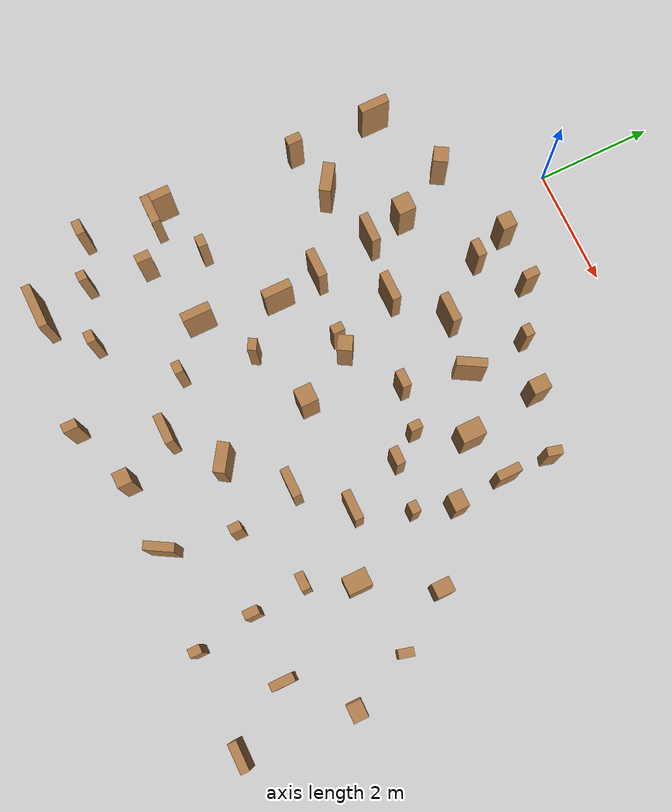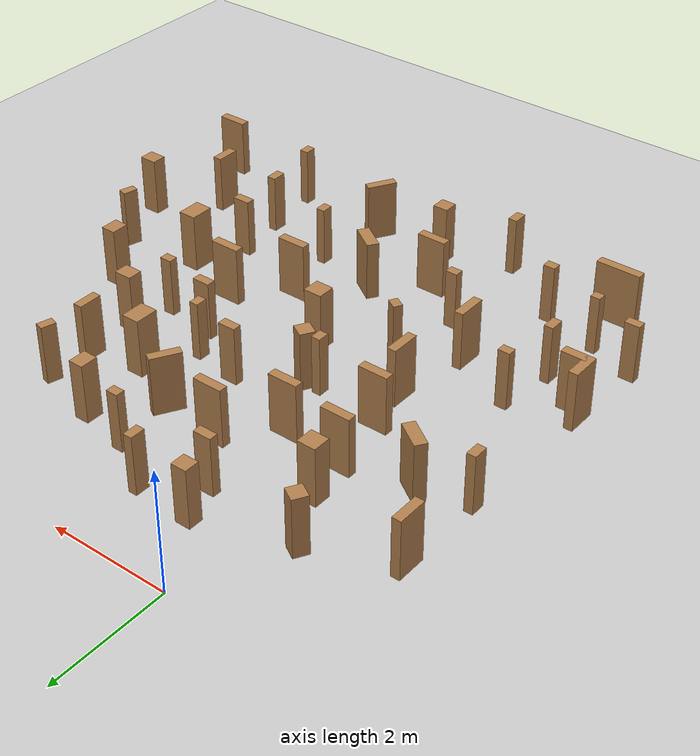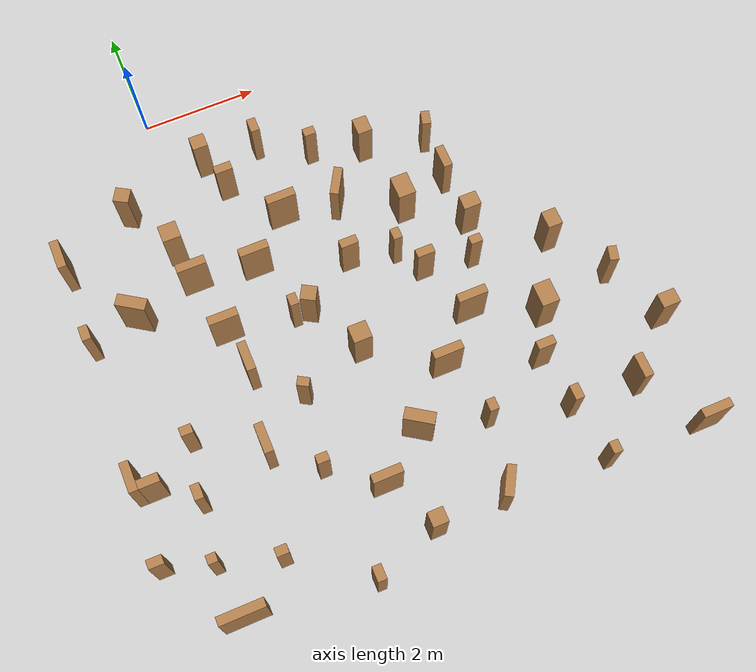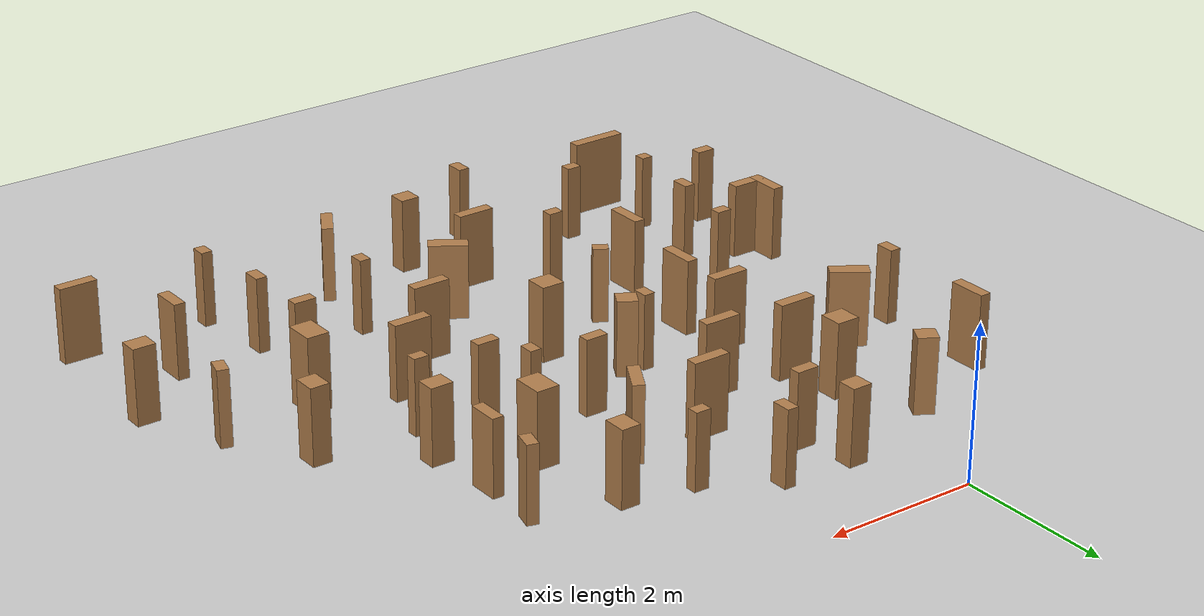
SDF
<sdf version="1.7">
 <world name="default">
  <model name="ground_plane">
   <static>1</static>
   <link name="link">
    <collision name="collision">
     <geometry><plane><normal>0 0 1</normal><size>100 100</size></plane></geometry>
     <surface><friction><ode><mu>100</mu><mu2>50</mu2></ode></friction></surface>
    </collision>
    <visual name="visual">
     <cast_shadows>0</cast_shadows>
     <geometry><plane><normal>0 0 1</normal><size>100 100</size></plane></geometry>
     <material>
      <script><uri>file://media/materials/scripts/gazebo.material</uri><name>Gazebo/Grey</name></script>
     </material>
    </visual>
   </link>
  </model>
  <model name="t4">
   <pose>2.23777 -6.70674 0 0 -0 0</pose>
   <link name="Wall_0">
    <collision name="Wall_0_Collision">
     <geometry><box><size>0.5 0.15 1</size></box></geometry>
     <pose>0 0 0.5 0 -0 0</pose>
    </collision>
    <visual name="Wall_0_Visual">
     <pose>0 0 0.5 0 -0 0</pose>
     <geometry><box><size>0.5 0.15 1</size></box></geometry>
     <material>
      <script><uri>file://media/materials/scripts/gazebo.material</uri><name>Gazebo/Wood</name></script>
      <ambient>1 1 1 1</ambient>
     </material>
     <meta><layer>0</layer></meta>
    </visual>
    <pose>1.58829 1.21472 0 0 -0 0</pose>
   </link>
   <link name="Wall_10">
    <collision name="Wall_10_Collision">
     <geometry><box><size>0.16 0.15 1</size></box></geometry>
     <pose>0 0 0.5 0 -0 0</pose>
    </collision>
    <visual name="Wall_10_Visual">
     <pose>0 0 0.5 0 -0 0</pose>
     <geometry><box><size>0.16 0.15 1</size></box></geometry>
     <material>
      <script><uri>file://media/materials/scripts/gazebo.material</uri><name>Gazebo/Wood</name></script>
      <ambient>1 1 1 1</ambient>
     </material>
     <meta><layer>0</layer></meta>
    </visual>
    <pose>-3.6939 -1.13396 0 0 -0 0</pose>
   </link>
   <link name="Wall_101">
    <collision name="Wall_101_Collision">
     <geometry><box><size>0.3 0.25 1</size></box></geometry>
     <pose>0 0 0.5 0 -0 0</pose>
    </collision>
    <visual name="Wall_101_Visual">
     <pose>0 0 0.5 0 -0 0</pose>
     <geometry><box><size>0.3 0.25 1</size></box></geometry>
     <material>
      <script><uri>file://media/materials/scripts/gazebo.material</uri><name>Gazebo/Wood</name></script>
      <ambient>1 1 1 1</ambient>
     </material>
     <meta><layer>0</layer></meta>
    </visual>
    <pose>4.45517 -0.084468 0 0 -0 0</pose>
   </link>
   <link name="Wall_103">
    <collision name="Wall_103_Collision">
     <geometry><box><size>0.3 0.25 1</size></box></geometry>
     <pose>0 0 0.5 0 -0 0</pose>
    </collision>
    <visual name="Wall_103_Visual">
     <pose>0 0 0.5 0 -0 0</pose>
     <geometry><box><size>0.3 0.25 1</size></box></geometry>
     <material>
      <script><uri>file://media/materials/scripts/gazebo.material</uri><name>Gazebo/Wood</name></script>
      <ambient>1 1 1 1</ambient>
     </material>
     <meta><layer>0</layer></meta>
    </visual>
    <pose>3.35025 1.92404 0 0 -0 -1.5708</pose>
   </link>
   <link name="Wall_105">
    <collision name="Wall_105_Collision">
     <geometry><box><size>0.4 0.15 1</size></box></geometry>
     <pose>0 0 0.5 0 -0 0</pose>
    </collision>
    <visual name="Wall_105_Visual">
     <pose>0 0 0.5 0 -0 0</pose>
     <geometry><box><size>0.4 0.15 1</size></box></geometry>
     <material>
      <script><uri>file://media/materials/scripts/gazebo.material</uri><name>Gazebo/Wood</name></script>
      <ambient>1 1 1 1</ambient>
     </material>
     <meta><layer>0</layer></meta>
    </visual>
    <pose>3.56584 -0.930575 0 0 -0 -1.5708</pose>
   </link>
   <link name="Wall_18">
    <collision name="Wall_18_Collision">
     <geometry><box><size>0.2 0.15 1</size></box></geometry>
     <pose>0 0 0.5 0 -0 0</pose>
    </collision>
    <visual name="Wall_18_Visual">
     <pose>0 0 0.5 0 -0 0</pose>
     <geometry><box><size>0.2 0.15 1</size></box></geometry>
     <material>
      <script><uri>file://media/materials/scripts/gazebo.material</uri><name>Gazebo/Wood</name></script>
      <ambient>1 1 1 1</ambient>
     </material>
     <meta><layer>0</layer></meta>
    </visual>
    <pose>-3.398 0.855484 0 0 -0 0</pose>
   </link>
   <link name="Wall_2">
    <collision name="Wall_2_Collision">
     <geometry><box><size>0.2 0.15 1</size></box></geometry>
     <pose>0 0 0.5 0 -0 0</pose>
    </collision>
    <visual name="Wall_2_Visual">
     <pose>0 0 0.5 0 -0 0</pose>
     <geometry><box><size>0.2 0.15 1</size></box></geometry>
     <material>
      <script><uri>file://media/materials/scripts/gazebo.material</uri><name>Gazebo/Wood</name></script>
      <ambient>1 1 1 1</ambient>
     </material>
     <meta><layer>0</layer></meta>
    </visual>
    <pose>-1.62863 -0.357706 0 0 -0 3.14159</pose>
   </link>
   <link name="Wall_21">
    <collision name="Wall_21_Collision">
     <geometry><box><size>0.500017 0.2 1</size></box></geometry>
     <pose>0 0 0.5 0 -0 0</pose>
    </collision>
    <visual name="Wall_21_Visual">
     <pose>0 0 0.5 0 -0 0</pose>
     <geometry><box><size>0.500017 0.2 1</size></box></geometry>
     <material>
      <script><uri>file://media/materials/scripts/gazebo.material</uri><name>Gazebo/Wood</name></script>
      <ambient>1 1 1 1</ambient>
     </material>
     <meta><layer>0</layer></meta>
    </visual>
    <pose>0.004302 -0.326313 0 0 -0 -0.586607</pose>
   </link>
   <link name="Wall_27">
    <collision name="Wall_27_Collision">
     <geometry><box><size>0.2 0.15 1</size></box></geometry>
     <pose>0 0 0.5 0 -0 0</pose>
    </collision>
    <visual name="Wall_27_Visual">
     <pose>0 0 0.5 0 -0 0</pose>
     <geometry><box><size>0.2 0.15 1</size></box></geometry>
     <material>
      <script><uri>file://media/materials/scripts/gazebo.material</uri><name>Gazebo/Wood</name></script>
      <ambient>1 1 1 1</ambient>
     </material>
     <meta><layer>0</layer></meta>
    </visual>
    <pose>-2.7009 -1.42216 0 0 -0 0</pose>
   </link>
   <link name="Wall_29">
    <collision name="Wall_29_Collision">
     <geometry><box><size>0.2 0.15 1</size></box></geometry>
     <pose>0 0 0.5 0 -0 0</pose>
    </collision>
    <visual name="Wall_29_Visual">
     <pose>0 0 0.5 0 -0 0</pose>
     <geometry><box><size>0.2 0.15 1</size></box></geometry>
     <material>
      <script><uri>file://media/materials/scripts/gazebo.material</uri><name>Gazebo/Wood</name></script>
      <ambient>1 1 1 1</ambient>
     </material>
     <meta><layer>0</layer></meta>
    </visual>
    <pose>-1.4511 0.885557 0 0 -0 -0.523599</pose>
   </link>
   <link name="Wall_36">
    <collision name="Wall_36_Collision">
     <geometry><box><size>0.26 0.25 1</size></box></geometry>
     <pose>0 0 0.5 0 -0 0</pose>
    </collision>
    <visual name="Wall_36_Visual">
     <pose>0 0 0.5 0 -0 0</pose>
     <geometry><box><size>0.26 0.25 1</size></box></geometry>
     <material>
      <script><uri>file://media/materials/scripts/gazebo.material</uri><name>Gazebo/Wood</name></script>
      <ambient>1 1 1 1</ambient>
     </material>
     <meta><layer>0</layer></meta>
    </visual>
    <pose>-0.371904 -1.8681 0 0 -0 0</pose>
   </link>
   <link name="Wall_38">
    <collision name="Wall_38_Collision">
     <geometry><box><size>0.26 0.25 1</size></box></geometry>
     <pose>0 0 0.5 0 -0 0</pose>
    </collision>
    <visual name="Wall_38_Visual">
     <pose>0 0 0.5 0 -0 0</pose>
     <geometry><box><size>0.26 0.25 1</size></box></geometry>
     <material>
      <script><uri>file://media/materials/scripts/gazebo.material</uri><name>Gazebo/Wood</name></script>
      <ambient>1 1 1 1</ambient>
     </material>
     <meta><layer>0</layer></meta>
    </visual>
    <pose>-0.826588 2.23874 0 0 -0 -0.523599</pose>
   </link>
   <link name="Wall_47">
    <collision name="Wall_47_Collision">
     <geometry><box><size>0.5 0.15 1</size></box></geometry>
     <pose>0 0 0.5 0 -0 0</pose>
    </collision>
    <visual name="Wall_47_Visual">
     <pose>0 0 0.5 0 -0 0</pose>
     <geometry><box><size>0.5 0.15 1</size></box></geometry>
     <material>
      <script><uri>file://media/materials/scripts/gazebo.material</uri><name>Gazebo/Wood</name></script>
      <ambient>1 1 1 1</ambient>
     </material>
     <meta><layer>0</layer></meta>
    </visual>
    <pose>-2.33995 0.28426 0 0 -0 -1.5708</pose>
   </link>
   <link name="Wall_54">
    <collision name="Wall_54_Collision">
     <geometry><box><size>0.5 0.15 1</size></box></geometry>
     <pose>0 0 0.5 0 -0 0</pose>
    </collision>
    <visual name="Wall_54_Visual">
     <pose>0 0 0.5 0 -0 0</pose>
     <geometry><box><size>0.5 0.15 1</size></box></geometry>
     <material>
      <script><uri>file://media/materials/scripts/gazebo.material</uri><name>Gazebo/Wood</name></script>
      <ambient>1 1 1 1</ambient>
     </material>
     <meta><layer>0</layer></meta>
    </visual>
    <pose>-0.813542 -0.960254 0 0 -0 0</pose>
   </link>
   <link name="Wall_56">
    <collision name="Wall_56_Collision">
     <geometry><box><size>0.25 0.15 1</size></box></geometry>
     <pose>0 0 0.5 0 -0 0</pose>
    </collision>
    <visual name="Wall_56_Visual">
     <pose>0 0 0.5 0 -0 0</pose>
     <geometry><box><size>0.25 0.15 1</size></box></geometry>
     <material>
      <script><uri>file://media/materials/scripts/gazebo.material</uri><name>Gazebo/Wood</name></script>
      <ambient>1 1 1 1</ambient>
     </material>
     <meta><layer>0</layer></meta>
    </visual>
    <pose>-3.56092 -0.10925 0 0 -0 -1.5708</pose>
   </link>
   <link name="Wall_58">
    <collision name="Wall_58_Collision">
     <geometry><box><size>0.5 0.15 1</size></box></geometry>
     <pose>0 0 0.5 0 -0 0</pose>
    </collision>
    <visual name="Wall_58_Visual">
     <pose>0 0 0.5 0 -0 0</pose>
     <geometry><box><size>0.5 0.15 1</size></box></geometry>
     <material>
      <script><uri>file://media/materials/scripts/gazebo.material</uri><name>Gazebo/Wood</name></script>
      <ambient>1 1 1 1</ambient>
     </material>
     <meta><layer>0</layer></meta>
    </visual>
    <pose>0.840282 0.492805 0 0 -0 0</pose>
   </link>
   <link name="Wall_6">
    <collision name="Wall_6_Collision">
     <geometry><box><size>0.25 0.15 1</size></box></geometry>
     <pose>0 0 0.5 0 -0 0</pose>
    </collision>
    <visual name="Wall_6_Visual">
     <pose>0 0 0.5 0 -0 0</pose>
     <geometry><box><size>0.25 0.15 1</size></box></geometry>
     <material>
      <script><uri>file://media/materials/scripts/gazebo.material</uri><name>Gazebo/Wood</name></script>
      <ambient>1 1 1 1</ambient>
     </material>
     <meta><layer>0</layer></meta>
    </visual>
    <pose>2.40708 -0.915446 0 0 -0 -1.5708</pose>
   </link>
   <link name="Wall_60">
    <collision name="Wall_60_Collision">
     <geometry><box><size>0.3 0.15 1</size></box></geometry>
     <pose>0 0 0.5 0 -0 0</pose>
    </collision>
    <visual name="Wall_60_Visual">
     <pose>0 0 0.5 0 -0 0</pose>
     <geometry><box><size>0.3 0.15 1</size></box></geometry>
     <material>
      <script><uri>file://media/materials/scripts/gazebo.material</uri><name>Gazebo/Wood</name></script>
      <ambient>1 1 1 1</ambient>
     </material>
     <meta><layer>0</layer></meta>
    </visual>
    <pose>2.3168 0.000774 0 0 -0 0</pose>
   </link>
   <link name="Wall_62">
    <collision name="Wall_62_Collision">
     <geometry><box><size>0.2 0.15 1</size></box></geometry>
     <pose>0 0 0.5 0 -0 0</pose>
    </collision>
    <visual name="Wall_62_Visual">
     <pose>0 0 0.5 0 -0 0</pose>
     <geometry><box><size>0.2 0.15 1</size></box></geometry>
     <material>
      <script><uri>file://media/materials/scripts/gazebo.material</uri><name>Gazebo/Wood</name></script>
      <ambient>1 1 1 1</ambient>
     </material>
     <meta><layer>0</layer></meta>
    </visual>
    <pose>1.11135 -0.593355 0 0 -0 -1.5708</pose>
   </link>
   <link name="Wall_64">
    <collision name="Wall_64_Collision">
     <geometry><box><size>0.499906 0.15 1</size></box></geometry>
     <pose>0 0 0.5 0 -0 0</pose>
    </collision>
    <visual name="Wall_64_Visual">
     <pose>0 0 0.5 0 -0 0</pose>
     <geometry><box><size>0.499906 0.15 1</size></box></geometry>
     <material>
      <script><uri>file://media/materials/scripts/gazebo.material</uri><name>Gazebo/Wood</name></script>
      <ambient>1 1 1 1</ambient>
     </material>
     <meta><layer>0</layer></meta>
    </visual>
    <pose>0.862365 -1.78414 0 0 -0 -2.09455</pose>
   </link>
   <link name="Wall_66">
    <collision name="Wall_66_Collision">
     <geometry><box><size>0.2 0.15 1</size></box></geometry>
     <pose>0 0 0.5 0 -0 0</pose>
    </collision>
    <visual name="Wall_66_Visual">
     <pose>0 0 0.5 0 -0 0</pose>
     <geometry><box><size>0.2 0.15 1</size></box></geometry>
     <material>
      <script><uri>file://media/materials/scripts/gazebo.material</uri><name>Gazebo/Wood</name></script>
      <ambient>1 1 1 1</ambient>
     </material>
     <meta><layer>0</layer></meta>
    </visual>
    <pose>2.56684 -1.93522 0 0 -0 -1.5708</pose>
   </link>
   <link name="Wall_68">
    <collision name="Wall_68_Collision">
     <geometry><box><size>0.75 0.15 1</size></box></geometry>
     <pose>0 0 0.5 0 -0 0</pose>
    </collision>
    <visual name="Wall_68_Visual">
     <pose>0 0 0.5 0 -0 0</pose>
     <geometry><box><size>0.75 0.15 1</size></box></geometry>
     <material>
      <script><uri>file://media/materials/scripts/gazebo.material</uri><name>Gazebo/Wood</name></script>
      <ambient>1 1 1 1</ambient>
     </material>
     <meta><layer>0</layer></meta>
    </visual>
    <pose>-3.55987 -2.02089 0 0 -0 0</pose>
   </link>
   <link name="Wall_70">
    <collision name="Wall_70_Collision">
     <geometry><box><size>0.3 0.15 1</size></box></geometry>
     <pose>0 0 0.5 0 -0 0</pose>
    </collision>
    <visual name="Wall_70_Visual">
     <pose>0 0 0.5 0 -0 0</pose>
     <geometry><box><size>0.3 0.15 1</size></box></geometry>
     <material>
      <script><uri>file://media/materials/scripts/gazebo.material</uri><name>Gazebo/Wood</name></script>
      <ambient>1 1 1 1</ambient>
     </material>
     <meta><layer>0</layer></meta>
    </visual>
    <pose>1.18866 2.18899 0 0 -0 0</pose>
   </link>
   <link name="Wall_74">
    <collision name="Wall_74_Collision">
     <geometry><box><size>0.2 0.15 1</size></box></geometry>
     <pose>0 0 0.5 0 -0 0</pose>
    </collision>
    <visual name="Wall_74_Visual">
     <pose>0 0 0.5 0 -0 0</pose>
     <geometry><box><size>0.2 0.15 1</size></box></geometry>
     <material>
      <script><uri>file://media/materials/scripts/gazebo.material</uri><name>Gazebo/Wood</name></script>
      <ambient>1 1 1 1</ambient>
     </material>
     <meta><layer>0</layer></meta>
    </visual>
    <pose>2.03497 2.06738 0 0 -0 0</pose>
   </link>
   <link name="Wall_78">
    <collision name="Wall_78_Collision">
     <geometry><box><size>0.31 0.3 1</size></box></geometry>
     <pose>0 0 0.5 0 -0 0</pose>
    </collision>
    <visual name="Wall_78_Visual">
     <pose>0 0 0.5 0 -0 0</pose>
     <geometry><box><size>0.31 0.3 1</size></box></geometry>
     <material>
      <script><uri>file://media/materials/scripts/gazebo.material</uri><name>Gazebo/Wood</name></script>
      <ambient>1 1 1 1</ambient>
     </material>
     <meta><layer>0</layer></meta>
    </visual>
    <pose>-0.324266 1.30486 0 0 -0 0</pose>
   </link>
   <link name="Wall_8">
    <collision name="Wall_8_Collision">
     <geometry><box><size>0.25 0.15 1</size></box></geometry>
     <pose>0 0 0.5 0 -0 0</pose>
    </collision>
    <visual name="Wall_8_Visual">
     <pose>0 0 0.5 0 -0 0</pose>
     <geometry><box><size>0.25 0.15 1</size></box></geometry>
     <material>
      <script><uri>file://media/materials/scripts/gazebo.material</uri><name>Gazebo/Wood</name></script>
      <ambient>1 1 1 1</ambient>
     </material>
     <meta><layer>0</layer></meta>
    </visual>
    <pose>-1.49517 -2.28699 0 0 -0 -1.5708</pose>
   </link>
   <link name="Wall_80">
    <collision name="Wall_80_Collision">
     <geometry><box><size>0.4 0.3 1</size></box></geometry>
     <pose>0 0 0.5 0 -0 0</pose>
    </collision>
    <visual name="Wall_80_Visual">
     <pose>0 0 0.5 0 -0 0</pose>
     <geometry><box><size>0.4 0.3 1</size></box></geometry>
     <material>
      <script><uri>file://media/materials/scripts/gazebo.material</uri><name>Gazebo/Wood</name></script>
      <ambient>1 1 1 1</ambient>
     </material>
     <meta><layer>0</layer></meta>
    </visual>
    <pose>2.68619 0.763071 0 0 -0 1.5708</pose>
   </link>
   <link name="Wall_88">
    <collision name="Wall_88_Collision">
     <geometry><box><size>0.5 0.15 1</size></box></geometry>
     <pose>0 0 0.5 0 -0 0</pose>
    </collision>
    <visual name="Wall_88_Visual">
     <pose>0 0 0.5 0 -0 0</pose>
     <geometry><box><size>0.5 0.15 1</size></box></geometry>
     <material>
      <script><uri>file://media/materials/scripts/gazebo.material</uri><name>Gazebo/Wood</name></script>
      <ambient>1 1 1 1</ambient>
     </material>
     <meta><layer>0</layer></meta>
    </visual>
    <pose>-4.43917 0.507008 0 0 -0 -1.5708</pose>
   </link>
   <link name="Wall_89">
    <collision name="Wall_89_Collision">
     <geometry><box><size>0.5 0.15 1</size></box></geometry>
     <pose>0 0 0.5 0 -0 0</pose>
    </collision>
    <visual name="Wall_89_Visual">
     <pose>0 0 0.5 0 -0 0</pose>
     <geometry><box><size>0.5 0.15 1</size></box></geometry>
     <material>
      <script><uri>file://media/materials/scripts/gazebo.material</uri><name>Gazebo/Wood</name></script>
      <ambient>1 1 1 1</ambient>
     </material>
     <meta><layer>0</layer></meta>
    </visual>
    <pose>-4.26417 0.332008 0 0 -0 0</pose>
   </link>
   <link name="Wall_91">
    <collision name="Wall_91_Collision">
     <geometry><box><size>0.25 0.15 1</size></box></geometry>
     <pose>0 0 0.5 0 -0 0</pose>
    </collision>
    <visual name="Wall_91_Visual">
     <pose>0 0 0.5 0 -0 0</pose>
     <geometry><box><size>0.25 0.15 1</size></box></geometry>
     <material>
      <script><uri>file://media/materials/scripts/gazebo.material</uri><name>Gazebo/Wood</name></script>
      <ambient>1 1 1 1</ambient>
     </material>
     <meta><layer>0</layer></meta>
    </visual>
    <pose>-4.48017 -0.857993 0 0 -0 0</pose>
   </link>
   <link name="Wall_95">
    <collision name="Wall_95_Collision">
     <geometry><box><size>0.250424 0.15 1</size></box></geometry>
     <pose>0 0 0.5 0 -0 0</pose>
    </collision>
    <visual name="Wall_95_Visual">
     <pose>0 0 0.5 0 -0 0</pose>
     <geometry><box><size>0.250424 0.15 1</size></box></geometry>
     <material>
      <script><uri>file://media/materials/scripts/gazebo.material</uri><name>Gazebo/Wood</name></script>
      <ambient>1 1 1 1</ambient>
     </material>
     <meta><layer>0</layer></meta>
    </visual>
    <pose>3.99236 0.967279 0 0 -0 -1.83268</pose>
   </link>
   <link name="Wall_97">
    <collision name="Wall_97_Collision">
     <geometry><box><size>0.5 0.15 1</size></box></geometry>
     <pose>0 0 0.5 0 -0 0</pose>
    </collision>
    <visual name="Wall_97_Visual">
     <pose>0 0 0.5 0 -0 0</pose>
     <geometry><box><size>0.5 0.15 1</size></box></geometry>
     <material>
      <script><uri>file://media/materials/scripts/gazebo.material</uri><name>Gazebo/Wood</name></script>
      <ambient>1 1 1 1</ambient>
     </material>
     <meta><layer>0</layer></meta>
    </visual>
    <pose>4.2891 -1.98994 0 0 -0 0</pose>
   </link>
   <link name="Wall_99">
    <collision name="Wall_99_Collision">
     <geometry><box><size>0.5 0.15 1</size></box></geometry>
     <pose>0 0 0.5 0 -0 0</pose>
    </collision>
    <visual name="Wall_99_Visual">
     <pose>0 0 0.5 0 -0 0</pose>
     <geometry><box><size>0.5 0.15 1</size></box></geometry>
     <material>
      <script><uri>file://media/materials/scripts/gazebo.material</uri><name>Gazebo/Wood</name></script>
      <ambient>1 1 1 1</ambient>
     </material>
     <meta><layer>0</layer></meta>
    </visual>
    <pose>-2.12416 1.62714 0 0 -0 -1.5708</pose>
   </link>
   <static>1</static>
  </model>
  <model name="t5">
   <pose>1.2209 -3.54272 0 0 -0 0</pose>
   <link name="Wall_0">
    <collision name="Wall_0_Collision">
     <geometry><box><size>0.5 0.15 1</size></box></geometry>
     <pose>0 0 0.5 0 -0 0</pose>
    </collision>
    <visual name="Wall_0_Visual">
     <pose>0 0 0.5 0 -0 0</pose>
     <geometry><box><size>0.5 0.15 1</size></box></geometry>
     <material>
      <script><uri>file://media/materials/scripts/gazebo.material</uri><name>Gazebo/Wood</name></script>
      <ambient>1 1 1 1</ambient>
     </material>
     <meta><layer>0</layer></meta>
    </visual>
    <pose>0.390596 0.875877 0 0 -0 0</pose>
   </link>
   <link name="Wall_101">
    <collision name="Wall_101_Collision">
     <geometry><box><size>0.3 0.25 1</size></box></geometry>
     <pose>0 0 0.5 0 -0 0</pose>
    </collision>
    <visual name="Wall_101_Visual">
     <pose>0 0 0.5 0 -0 0</pose>
     <geometry><box><size>0.3 0.25 1</size></box></geometry>
     <material>
      <script><uri>file://media/materials/scripts/gazebo.material</uri><name>Gazebo/Wood</name></script>
      <ambient>1 1 1 1</ambient>
     </material>
     <meta><layer>0</layer></meta>
    </visual>
    <pose>3.25747 -0.423314 0 0 -0 0</pose>
   </link>
   <link name="Wall_103">
    <collision name="Wall_103_Collision">
     <geometry><box><size>0.3 0.25 1</size></box></geometry>
     <pose>0 0 0.5 0 -0 0</pose>
    </collision>
    <visual name="Wall_103_Visual">
     <pose>0 0 0.5 0 -0 0</pose>
     <geometry><box><size>0.3 0.25 1</size></box></geometry>
     <material>
      <script><uri>file://media/materials/scripts/gazebo.material</uri><name>Gazebo/Wood</name></script>
      <ambient>1 1 1 1</ambient>
     </material>
     <meta><layer>0</layer></meta>
    </visual>
    <pose>2.15255 1.5852 0 0 -0 -1.5708</pose>
   </link>
   <link name="Wall_105">
    <collision name="Wall_105_Collision">
     <geometry><box><size>0.4 0.15 1</size></box></geometry>
     <pose>0 0 0.5 0 -0 0</pose>
    </collision>
    <visual name="Wall_105_Visual">
     <pose>0 0 0.5 0 -0 0</pose>
     <geometry><box><size>0.4 0.15 1</size></box></geometry>
     <material>
      <script><uri>file://media/materials/scripts/gazebo.material</uri><name>Gazebo/Wood</name></script>
      <ambient>1 1 1 1</ambient>
     </material>
     <meta><layer>0</layer></meta>
    </visual>
    <pose>3.19281 0.500574 0 0 -0 -1.5708</pose>
   </link>
   <link name="Wall_21">
    <collision name="Wall_21_Collision">
     <geometry><box><size>0.500017 0.2 1</size></box></geometry>
     <pose>0 0 0.5 0 -0 0</pose>
    </collision>
    <visual name="Wall_21_Visual">
     <pose>0 0 0.5 0 -0 0</pose>
     <geometry><box><size>0.500017 0.2 1</size></box></geometry>
     <material>
      <script><uri>file://media/materials/scripts/gazebo.material</uri><name>Gazebo/Wood</name></script>
      <ambient>1 1 1 1</ambient>
     </material>
     <meta><layer>0</layer></meta>
    </visual>
    <pose>-2.48871 0.02876 0 0 -0 -0.586607</pose>
   </link>
   <link name="Wall_36">
    <collision name="Wall_36_Collision">
     <geometry><box><size>0.26 0.25 1</size></box></geometry>
     <pose>0 0 0.5 0 -0 0</pose>
    </collision>
    <visual name="Wall_36_Visual">
     <pose>0 0 0.5 0 -0 0</pose>
     <geometry><box><size>0.26 0.25 1</size></box></geometry>
     <material>
      <script><uri>file://media/materials/scripts/gazebo.material</uri><name>Gazebo/Wood</name></script>
      <ambient>1 1 1 1</ambient>
     </material>
     <meta><layer>0</layer></meta>
    </visual>
    <pose>-0.523693 2.35884 0 0 -0 0</pose>
   </link>
   <link name="Wall_38">
    <collision name="Wall_38_Collision">
     <geometry><box><size>0.26 0.25 1</size></box></geometry>
     <pose>0 0 0.5 0 -0 0</pose>
    </collision>
    <visual name="Wall_38_Visual">
     <pose>0 0 0.5 0 -0 0</pose>
     <geometry><box><size>0.26 0.25 1</size></box></geometry>
     <material>
      <script><uri>file://media/materials/scripts/gazebo.material</uri><name>Gazebo/Wood</name></script>
      <ambient>1 1 1 1</ambient>
     </material>
     <meta><layer>0</layer></meta>
    </visual>
    <pose>-2.02428 1.89989 0 0 -0 -0.523599</pose>
   </link>
   <link name="Wall_54">
    <collision name="Wall_54_Collision">
     <geometry><box><size>0.5 0.15 1</size></box></geometry>
     <pose>0 0 0.5 0 -0 0</pose>
    </collision>
    <visual name="Wall_54_Visual">
     <pose>0 0 0.5 0 -0 0</pose>
     <geometry><box><size>0.5 0.15 1</size></box></geometry>
     <material>
      <script><uri>file://media/materials/scripts/gazebo.material</uri><name>Gazebo/Wood</name></script>
      <ambient>1 1 1 1</ambient>
     </material>
     <meta><layer>0</layer></meta>
    </visual>
    <pose>-1.2248 -0.767096 0 0 -0 0</pose>
   </link>
   <link name="Wall_58">
    <collision name="Wall_58_Collision">
     <geometry><box><size>0.5 0.15 1</size></box></geometry>
     <pose>0 0 0.5 0 -0 0</pose>
    </collision>
    <visual name="Wall_58_Visual">
     <pose>0 0 0.5 0 -0 0</pose>
     <geometry><box><size>0.5 0.15 1</size></box></geometry>
     <material>
      <script><uri>file://media/materials/scripts/gazebo.material</uri><name>Gazebo/Wood</name></script>
      <ambient>1 1 1 1</ambient>
     </material>
     <meta><layer>0</layer></meta>
    </visual>
    <pose>-0.357412 0.15396 0 0 -0 0</pose>
   </link>
   <link name="Wall_6">
    <collision name="Wall_6_Collision">
     <geometry><box><size>0.25 0.15 1</size></box></geometry>
     <pose>0 0 0.5 0 -0 0</pose>
    </collision>
    <visual name="Wall_6_Visual">
     <pose>0 0 0.5 0 -0 0</pose>
     <geometry><box><size>0.25 0.15 1</size></box></geometry>
     <material>
      <script><uri>file://media/materials/scripts/gazebo.material</uri><name>Gazebo/Wood</name></script>
      <ambient>1 1 1 1</ambient>
     </material>
     <meta><layer>0</layer></meta>
    </visual>
    <pose>0.445072 2.30581 0 0 -0 -1.5708</pose>
   </link>
   <link name="Wall_60">
    <collision name="Wall_60_Collision">
     <geometry><box><size>0.3 0.15 1</size></box></geometry>
     <pose>0 0 0.5 0 -0 0</pose>
    </collision>
    <visual name="Wall_60_Visual">
     <pose>0 0 0.5 0 -0 0</pose>
     <geometry><box><size>0.3 0.15 1</size></box></geometry>
     <material>
      <script><uri>file://media/materials/scripts/gazebo.material</uri><name>Gazebo/Wood</name></script>
      <ambient>1 1 1 1</ambient>
     </material>
     <meta><layer>0</layer></meta>
    </visual>
    <pose>1.1191 -0.338071 0 0 -0 0</pose>
   </link>
   <link name="Wall_62">
    <collision name="Wall_62_Collision">
     <geometry><box><size>0.2 0.15 1</size></box></geometry>
     <pose>0 0 0.5 0 -0 0</pose>
    </collision>
    <visual name="Wall_62_Visual">
     <pose>0 0 0.5 0 -0 0</pose>
     <geometry><box><size>0.2 0.15 1</size></box></geometry>
     <material>
      <script><uri>file://media/materials/scripts/gazebo.material</uri><name>Gazebo/Wood</name></script>
      <ambient>1 1 1 1</ambient>
     </material>
     <meta><layer>0</layer></meta>
    </visual>
    <pose>-0.086348 -0.9322 0 0 -0 -1.5708</pose>
   </link>
   <link name="Wall_64">
    <collision name="Wall_64_Collision">
     <geometry><box><size>0.499906 0.15 1</size></box></geometry>
     <pose>0 0 0.5 0 -0 0</pose>
    </collision>
    <visual name="Wall_64_Visual">
     <pose>0 0 0.5 0 -0 0</pose>
     <geometry><box><size>0.499906 0.15 1</size></box></geometry>
     <material>
      <script><uri>file://media/materials/scripts/gazebo.material</uri><name>Gazebo/Wood</name></script>
      <ambient>1 1 1 1</ambient>
     </material>
     <meta><layer>0</layer></meta>
    </visual>
    <pose>1.35421 0.773368 0 0 -0 -2.09455</pose>
   </link>
   <link name="Wall_66">
    <collision name="Wall_66_Collision">
     <geometry><box><size>0.2 0.15 1</size></box></geometry>
     <pose>0 0 0.5 0 -0 0</pose>
    </collision>
    <visual name="Wall_66_Visual">
     <pose>0 0 0.5 0 -0 0</pose>
     <geometry><box><size>0.2 0.15 1</size></box></geometry>
     <material>
      <script><uri>file://media/materials/scripts/gazebo.material</uri><name>Gazebo/Wood</name></script>
      <ambient>1 1 1 1</ambient>
     </material>
     <meta><layer>0</layer></meta>
    </visual>
    <pose>1.8921 -0.50407 0 0 -0 -1.5708</pose>
   </link>
   <link name="Wall_70">
    <collision name="Wall_70_Collision">
     <geometry><box><size>0.3 0.15 1</size></box></geometry>
     <pose>0 0 0.5 0 -0 0</pose>
    </collision>
    <visual name="Wall_70_Visual">
     <pose>0 0 0.5 0 -0 0</pose>
     <geometry><box><size>0.3 0.15 1</size></box></geometry>
     <material>
      <script><uri>file://media/materials/scripts/gazebo.material</uri><name>Gazebo/Wood</name></script>
      <ambient>1 1 1 1</ambient>
     </material>
     <meta><layer>0</layer></meta>
    </visual>
    <pose>-0.309733 1.73449 0 0 -0 0</pose>
   </link>
   <link name="Wall_74">
    <collision name="Wall_74_Collision">
     <geometry><box><size>0.2 0.15 1</size></box></geometry>
     <pose>0 0 0.5 0 -0 0</pose>
    </collision>
    <visual name="Wall_74_Visual">
     <pose>0 0 0.5 0 -0 0</pose>
     <geometry><box><size>0.2 0.15 1</size></box></geometry>
     <material>
      <script><uri>file://media/materials/scripts/gazebo.material</uri><name>Gazebo/Wood</name></script>
      <ambient>1 1 1 1</ambient>
     </material>
     <meta><layer>0</layer></meta>
    </visual>
    <pose>1.27676 1.82106 0 0 -0 0</pose>
   </link>
   <link name="Wall_78">
    <collision name="Wall_78_Collision">
     <geometry><box><size>0.31 0.3 1</size></box></geometry>
     <pose>0 0 0.5 0 -0 0</pose>
    </collision>
    <visual name="Wall_78_Visual">
     <pose>0 0 0.5 0 -0 0</pose>
     <geometry><box><size>0.31 0.3 1</size></box></geometry>
     <material>
      <script><uri>file://media/materials/scripts/gazebo.material</uri><name>Gazebo/Wood</name></script>
      <ambient>1 1 1 1</ambient>
     </material>
     <meta><layer>0</layer></meta>
    </visual>
    <pose>-1.52196 0.966018 0 0 -0 0</pose>
   </link>
   <link name="Wall_8">
    <collision name="Wall_8_Collision">
     <geometry><box><size>0.25 0.15 1</size></box></geometry>
     <pose>0 0 0.5 0 -0 0</pose>
    </collision>
    <visual name="Wall_8_Visual">
     <pose>0 0 0.5 0 -0 0</pose>
     <geometry><box><size>0.25 0.15 1</size></box></geometry>
     <material>
      <script><uri>file://media/materials/scripts/gazebo.material</uri><name>Gazebo/Wood</name></script>
      <ambient>1 1 1 1</ambient>
     </material>
     <meta><layer>0</layer></meta>
    </visual>
    <pose>-3.33247 -0.186061 0 0 -0 -1.5708</pose>
   </link>
   <link name="Wall_80">
    <collision name="Wall_80_Collision">
     <geometry><box><size>0.4 0.3 1</size></box></geometry>
     <pose>0 0 0.5 0 -0 0</pose>
    </collision>
    <visual name="Wall_80_Visual">
     <pose>0 0 0.5 0 -0 0</pose>
     <geometry><box><size>0.4 0.3 1</size></box></geometry>
     <material>
      <script><uri>file://media/materials/scripts/gazebo.material</uri><name>Gazebo/Wood</name></script>
      <ambient>1 1 1 1</ambient>
     </material>
     <meta><layer>0</layer></meta>
    </visual>
    <pose>2.34433 0.262311 0 0 -0 1.5708</pose>
   </link>
   <link name="Wall_95">
    <collision name="Wall_95_Collision">
     <geometry><box><size>0.250424 0.15 1</size></box></geometry>
     <pose>0 0 0.5 0 -0 0</pose>
    </collision>
    <visual name="Wall_95_Visual">
     <pose>0 0 0.5 0 -0 0</pose>
     <geometry><box><size>0.250424 0.15 1</size></box></geometry>
     <material>
      <script><uri>file://media/materials/scripts/gazebo.material</uri><name>Gazebo/Wood</name></script>
      <ambient>1 1 1 1</ambient>
     </material>
     <meta><layer>0</layer></meta>
    </visual>
    <pose>3.21102 1.29922 0 0 -0 -1.83268</pose>
   </link>
   <link name="Wall_97">
    <collision name="Wall_97_Collision">
     <geometry><box><size>0.5 0.15 1</size></box></geometry>
     <pose>0 0 0.5 0 -0 0</pose>
    </collision>
    <visual name="Wall_97_Visual">
     <pose>0 0 0.5 0 -0 0</pose>
     <geometry><box><size>0.5 0.15 1</size></box></geometry>
     <material>
      <script><uri>file://media/materials/scripts/gazebo.material</uri><name>Gazebo/Wood</name></script>
      <ambient>1 1 1 1</ambient>
     </material>
     <meta><layer>0</layer></meta>
    </visual>
    <pose>-1.39392 0.285977 0 0 -0 0</pose>
   </link>
   <link name="Wall_99">
    <collision name="Wall_99_Collision">
     <geometry><box><size>0.5 0.15 1</size></box></geometry>
     <pose>0 0 0.5 0 -0 0</pose>
    </collision>
    <visual name="Wall_99_Visual">
     <pose>0 0 0.5 0 -0 0</pose>
     <geometry><box><size>0.5 0.15 1</size></box></geometry>
     <material>
      <script><uri>file://media/materials/scripts/gazebo.material</uri><name>Gazebo/Wood</name></script>
      <ambient>1 1 1 1</ambient>
     </material>
     <meta><layer>0</layer></meta>
    </visual>
    <pose>-3.32186 1.2883 0 0 -0 -1.5708</pose>
   </link>
   <static>1</static>
  </model>
 </world>
</sdf>
